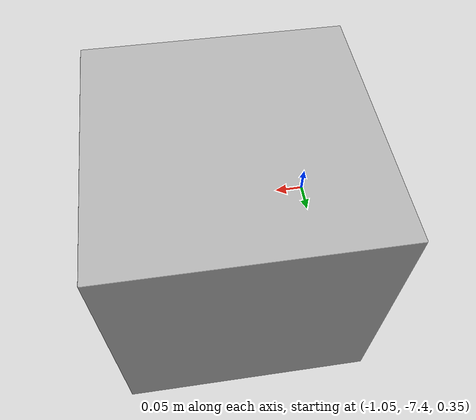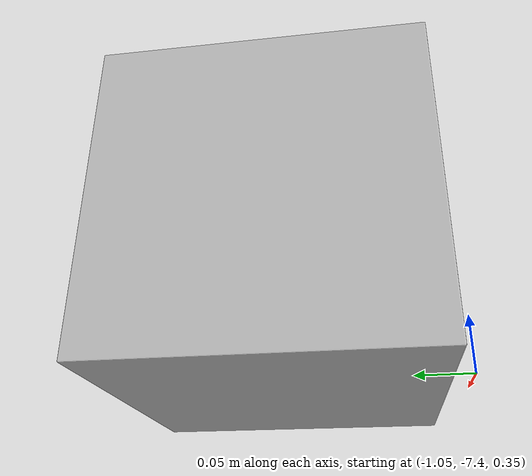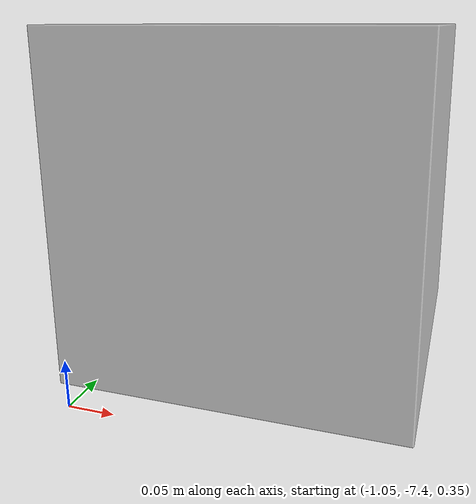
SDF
<?xml version="1.0" ?>
<sdf version="1.6">
  <model name="BULER2_008">
    <static>false</static>
    <link name="link">
      <inertial>
        <mass>1.0</mass>
        <inertia>
          <ixx>0.083</ixx> <ixy>0.0</ixy> <ixz>0.0</ixz>
          <iyy>0.083</iyy> <iyz>0.0</iyz>
          <izz>0.083</izz>
        </inertia>
      </inertial>
      <collision name="collision">
        <geometry>
          <mesh>
            <uri>model://BULER2_008/meshes/model.dae</uri>
          </mesh>
        </geometry>
      </collision>
      <visual name="visual">
        <geometry>
          <mesh>
            <uri>model://BULER2_008/meshes/model.dae</uri>
          </mesh>
        </geometry>
      </visual>
    </link>
  </model>
</sdf>
